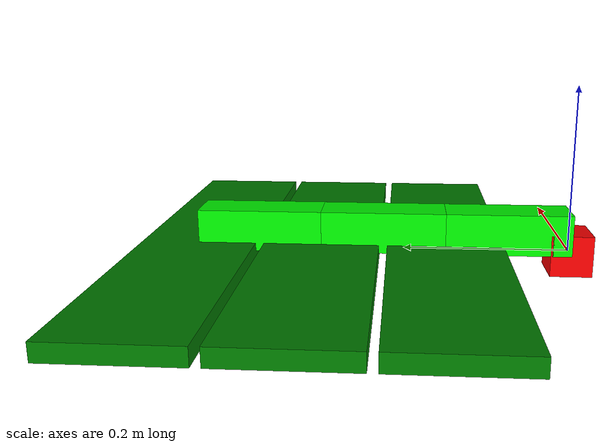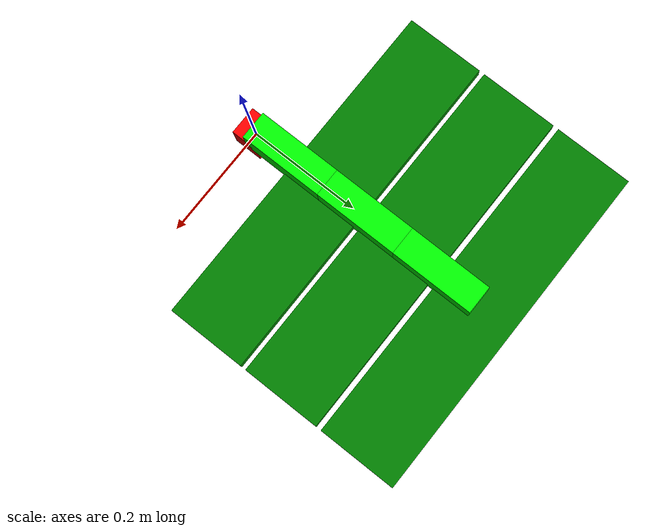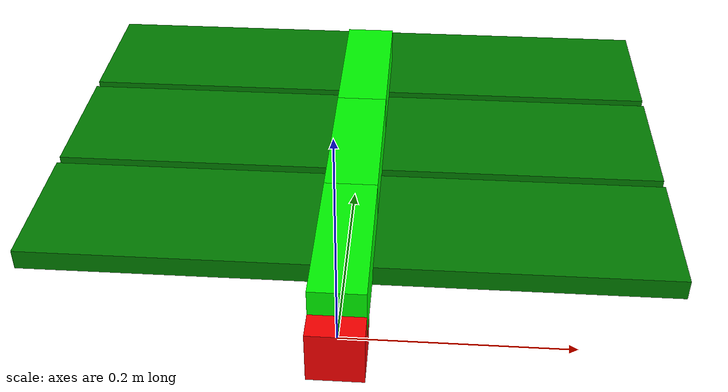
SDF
<?xml version='1.0'?>
<sdf version='1.6'>
  <model name='conveyor'>
    <link name='base_link'>
      <pose frame=''>0 0 0 0 0 0</pose>
      <visual name='visual_base'>
        <geometry>
          <box>
            <size>0.05 0.05 0.05</size>
          </box>
        </geometry>
        <material>
          <diffuse>1 0 0 1.0</diffuse>
        </material>
      </visual>
    </link>

    <link name='first_link'>
      <pose frame=''>0 0.15 0 0 0 0</pose>
      <inertial>
        <mass>53.5</mass>
        <pose frame=''>0 0 0 0 0 0</pose>
        <inertia>
          <ixx>5.177409</ixx>
          <ixy>0</ixy>
          <ixz>0</ixz>
          <iyy>4.843753753</iyy>
          <iyz>0</iyz>
          <izz>4.843753753</izz>
        </inertia>
      </inertial>
      <self_collide>0</self_collide>
      <kinematic>0</kinematic>

      <visual name='visual1'>
        <pose frame=''>0 0 0 0 0 0</pose>
        <geometry>
          <box>
            <size>0.6096 0.14 0.02</size>
          </box>
        </geometry>
        <material>
          <diffuse>0 0.5 0 1.0</diffuse>
        </material>
      </visual>

      <collision name='surface'>
        <laser_retro>0</laser_retro>
        <max_contacts>10</max_contacts>
        <pose frame=''>0 0 0 0 0 0</pose>
        <geometry>
          <box>
             <size>0.6096 0.14 0.02</size>
          </box>
        </geometry>
        <surface>
          <friction>
            <ode>
              <mu>0.6</mu>
              <mu2>0.6</mu2>
              <fdir1>0 0 0</fdir1>
              <slip1>0</slip1>
              <slip2>0</slip2>
            </ode>
            <torsional>
              <coefficient>1</coefficient>
              <patch_radius>0</patch_radius>
              <surface_radius>0</surface_radius>
              <use_patch_radius>1</use_patch_radius>
              <ode>
                <slip>0</slip>
              </ode>
            </torsional>
          </friction>
          <bounce>
            <restitution_coefficient>0</restitution_coefficient>
            <threshold>1e+06</threshold>
          </bounce>
          <contact>
            <collide_without_contact>0</collide_without_contact>
            <collide_without_contact_bitmask>1</collide_without_contact_bitmask>
            <collide_bitmask>1</collide_bitmask>
            <ode>
              <soft_cfm>0</soft_cfm>
              <soft_erp>0.2</soft_erp>
              <kp>1e+13</kp>
              <kd>1</kd>
              <max_vel>0.01</max_vel>
              <min_depth>0</min_depth>
            </ode>
            <bullet>
              <split_impulse>1</split_impulse>
              <split_impulse_penetration_threshold>-0.01</split_impulse_penetration_threshold>
              <soft_cfm>0</soft_cfm>
              <soft_erp>0.2</soft_erp>
              <kp>1e+13</kp>
              <kd>1</kd>
            </bullet>
          </contact>
        </surface>
      </collision>
    </link>

    <link name='second_link'>
      <pose frame=''>0 0.3 0 0 0 0</pose>
      <inertial>
        <mass>53.5</mass>
        <pose frame=''>0 0 0 0 0 0</pose>
        <inertia>
          <ixx>5.177409</ixx>
          <ixy>0</ixy>
          <ixz>0</ixz>
          <iyy>4.843753753</iyy>
          <iyz>0</iyz>
          <izz>4.843753753</izz>
        </inertia>
      </inertial>
      <self_collide>0</self_collide>
      <kinematic>0</kinematic>

      <visual name='visual2'>
        <pose frame=''>0 0 0 0 0 0</pose>
        <geometry>
          <box>
            <size>0.6096 0.14 0.02</size>
          </box>
        </geometry>
        <material>
          <diffuse>0 0.5 0 1.0</diffuse>
        </material>
      </visual>

      <collision name='surface'>
        <laser_retro>0</laser_retro>
        <max_contacts>10</max_contacts>
        <pose frame=''>0 0 0 0 0 0</pose>
        <geometry>
          <box>
             <size>0.6096 0.14 0.02</size>
          </box>
        </geometry>
        <surface>
          <friction>
            <ode>
              <mu>0.6</mu>
              <mu2>0.6</mu2>
              <fdir1>0 0 0</fdir1>
              <slip1>0</slip1>
              <slip2>0</slip2>
            </ode>
            <torsional>
              <coefficient>1</coefficient>
              <patch_radius>0</patch_radius>
              <surface_radius>0</surface_radius>
              <use_patch_radius>1</use_patch_radius>
              <ode>
                <slip>0</slip>
              </ode>
            </torsional>
          </friction>
          <bounce>
            <restitution_coefficient>0</restitution_coefficient>
            <threshold>1e+06</threshold>
          </bounce>
          <contact>
            <collide_without_contact>0</collide_without_contact>
            <collide_without_contact_bitmask>1</collide_without_contact_bitmask>
            <collide_bitmask>1</collide_bitmask>
            <ode>
              <soft_cfm>0</soft_cfm>
              <soft_erp>0.2</soft_erp>
              <kp>1e+13</kp>
              <kd>1</kd>
              <max_vel>0.01</max_vel>
              <min_depth>0</min_depth>
            </ode>
            <bullet>
              <split_impulse>1</split_impulse>
              <split_impulse_penetration_threshold>-0.01</split_impulse_penetration_threshold>
              <soft_cfm>0</soft_cfm>
              <soft_erp>0.2</soft_erp>
              <kp>1e+13</kp>
              <kd>1</kd>
            </bullet>
          </contact>
        </surface>
      </collision>
    </link>

    <link name='third_link'>
      <pose frame=''>0 0.45 0 0 0 0</pose>
      <inertial>
        <mass>53.5</mass>
        <pose frame=''>0 0 0 0 0 0</pose>
        <inertia>
          <ixx>5.177409</ixx>
          <ixy>0</ixy>
          <ixz>0</ixz>
          <iyy>4.843753753</iyy>
          <iyz>0</iyz>
          <izz>4.843753753</izz>
        </inertia>
      </inertial>
      <self_collide>0</self_collide>
      <kinematic>0</kinematic>

      <visual name='visual3'>
        <pose frame=''>0 0 0 0 0 0</pose>
        <geometry>
          <box>
            <size>0.6096 0.14 0.02</size>
          </box>
        </geometry>
        <material>
          <diffuse>0 0.5 0 1.0</diffuse>
        </material>
      </visual>

      <collision name='surface'>
        <laser_retro>0</laser_retro>
        <max_contacts>10</max_contacts>
        <pose frame=''>0 0 0 0 0 0</pose>
        <geometry>
          <box>
             <size>0.6096 0.14 0.02</size>
          </box>
        </geometry>
        <surface>
          <friction>
            <ode>
              <mu>0.6</mu>
              <mu2>0.6</mu2>
              <fdir1>0 0 0</fdir1>
              <slip1>0</slip1>
              <slip2>0</slip2>
            </ode>
            <torsional>
              <coefficient>1</coefficient>
              <patch_radius>0</patch_radius>
              <surface_radius>0</surface_radius>
              <use_patch_radius>1</use_patch_radius>
              <ode>
                <slip>0</slip>
              </ode>
            </torsional>
          </friction>
          <bounce>
            <restitution_coefficient>0</restitution_coefficient>
            <threshold>1e+06</threshold>
          </bounce>
          <contact>
            <collide_without_contact>0</collide_without_contact>
            <collide_without_contact_bitmask>1</collide_without_contact_bitmask>
            <collide_bitmask>1</collide_bitmask>
            <ode>
              <soft_cfm>0</soft_cfm>
              <soft_erp>0.2</soft_erp>
              <kp>1e+13</kp>
              <kd>1</kd>
              <max_vel>0.01</max_vel>
              <min_depth>0</min_depth>
            </ode>
            <bullet>
              <split_impulse>1</split_impulse>
              <split_impulse_penetration_threshold>-0.01</split_impulse_penetration_threshold>
              <soft_cfm>0</soft_cfm>
              <soft_erp>0.2</soft_erp>
              <kp>1e+13</kp>
              <kd>1</kd>
            </bullet>
          </contact>
        </surface>
      </collision>
    </link>

    <link name='connector_link_01'>
      <visual name='visual_01'>
        <pose> 0 0.075 0.025 0 0 0</pose>
        <geometry>
          <box>
            <size>0.05 0.15 0.05</size>
          </box>
        </geometry>
        <material>
          <diffuse>0 1 0 1.0</diffuse>
        </material>
      </visual>
    </link>

    <link name='connector_link_12'>
      <visual name='visual_12'>
        <pose> 0 0.225 0.025 0 0 0</pose>
        <geometry>
          <box>
            <size>0.05 0.15 0.05</size>
          </box>
        </geometry>
        <material>
          <diffuse>0 1 0 1.0</diffuse>
        </material>
      </visual>
    </link>

    <link name='connector_link_23'>
      <visual name='visual_23'>
        <pose> 0 0.375 0.025 0 0 0</pose>
        <geometry>
          <box>
            <size>0.05 0.15 0.05</size>
          </box>
        </geometry>
        <material>
          <diffuse>0 1 0 1.0</diffuse>
        </material>
      </visual>
    </link>

    <joint name="first_joint" type="revolute">
      <parent>base_link</parent>
      <child>connector_link_01</child>
      <axis>
        <xyz>1 0 0</xyz>
      </axis>
    </joint>
    <joint name="second_joint" type="revolute">
      <parent>connector_link_01</parent>
      <child>first_link</child>
      <axis>
        <xyz>1 0 0</xyz>
      </axis>
    </joint>
    <joint name="third_joint" type="revolute">
      <parent>first_link</parent>
      <child>connector_link_12</child>
      <axis>
        <xyz>1 0 0</xyz>
      </axis>
    </joint>
    <joint name="fourth_joint" type="revolute">
      <parent>connector_link_12</parent>
      <child>second_link</child>
      <axis>
        <xyz>1 0 0</xyz>
      </axis>
    </joint>
    <joint name="fifth_joint" type="revolute">
      <parent>second_link</parent>
      <child>connector_link_23</child>
      <axis>
        <xyz>1 0 0</xyz>
      </axis>
    </joint>
    <joint name="sixth_joint" type="revolute">
      <parent>connector_link_23</parent>
      <child>third_link</child>
      <axis>
        <xyz>1 0 0</xyz>
      </axis>
    </joint>

    <transmission name="tran_1">
      <robotNamespace>/conveyor</robotNamespace>
      <type>transmission_interface/SimpleTransmission</type>
      <joint name="first_joint">
        <hardwareInterface>PositionJointInterface</hardwareInterface>
      </joint>
      <actuator name="motor_1">
        <hardwareInterface>PositionJointInterface</hardwareInterface>
        <mechanicalReduction>1</mechanicalReduction>
      </actuator>
    </transmission>

    <transmission name="tran_2">
      <robotNamespace>/conveyor</robotNamespace>
      <type>transmission_interface/SimpleTransmission</type>
      <joint name="second_joint">
        <hardwareInterface>PositionJointInterface</hardwareInterface>
      </joint>
      <actuator name="motor_2">
        <hardwareInterface>PositionJointInterface</hardwareInterface>
        <mechanicalReduction>1</mechanicalReduction>
      </actuator>
    </transmission>

    <transmission name="tran_3">
      <robotNamespace>/conveyor</robotNamespace>
      <type>transmission_interface/SimpleTransmission</type>
      <joint name="third_joint">
        <hardwareInterface>PositionJointInterface</hardwareInterface>
      </joint>
      <actuator name="motor_3">
        <hardwareInterface>PositionJointInterface</hardwareInterface>
        <mechanicalReduction>1</mechanicalReduction>
      </actuator>
    </transmission>

    <transmission name="tran_4">
      <robotNamespace>/conveyor</robotNamespace>
      <type>transmission_interface/SimpleTransmission</type>
      <joint name="fourth_joint">
        <hardwareInterface>PositionJointInterface</hardwareInterface>
      </joint>
      <actuator name="motor_4">
        <hardwareInterface>PositionJointInterface</hardwareInterface>
        <mechanicalReduction>1</mechanicalReduction>
      </actuator>
    </transmission>

    <transmission name="tran_5">
      <robotNamespace>/conveyor</robotNamespace>
      <type>transmission_interface/SimpleTransmission</type>
      <joint name="fifth_joint">
        <hardwareInterface>PositionJointInterface</hardwareInterface>
      </joint>
      <actuator name="motor_5">
        <hardwareInterface>PositionJointInterface</hardwareInterface>
        <mechanicalReduction>1</mechanicalReduction>
      </actuator>
    </transmission>

    <transmission name="tran_6">
      <robotNamespace>/conveyor</robotNamespace>
      <type>transmission_interface/SimpleTransmission</type>
      <joint name="sixth_joint">
        <hardwareInterface>PositionJointInterface</hardwareInterface>
      </joint>
      <actuator name="motor_6">
        <hardwareInterface>PositionJointInterface</hardwareInterface>
        <mechanicalReduction>1</mechanicalReduction>
      </actuator>
    </transmission>

  </model>
</sdf>
